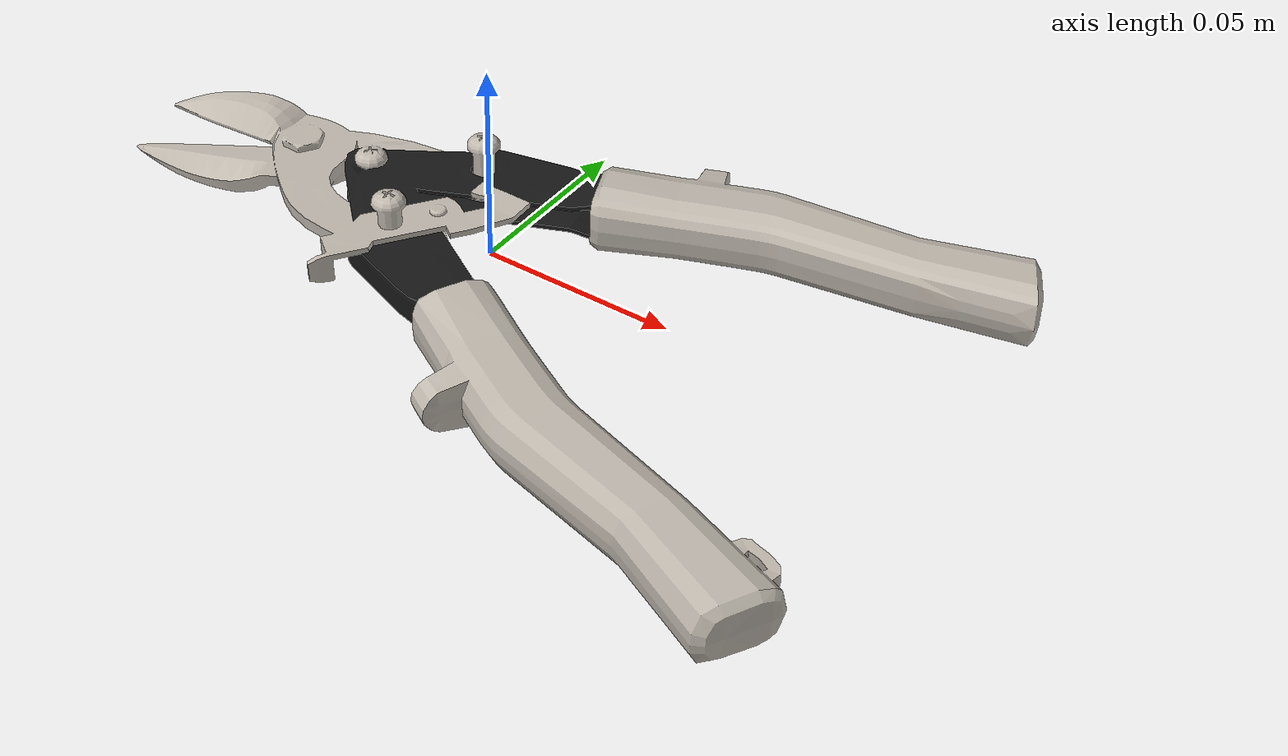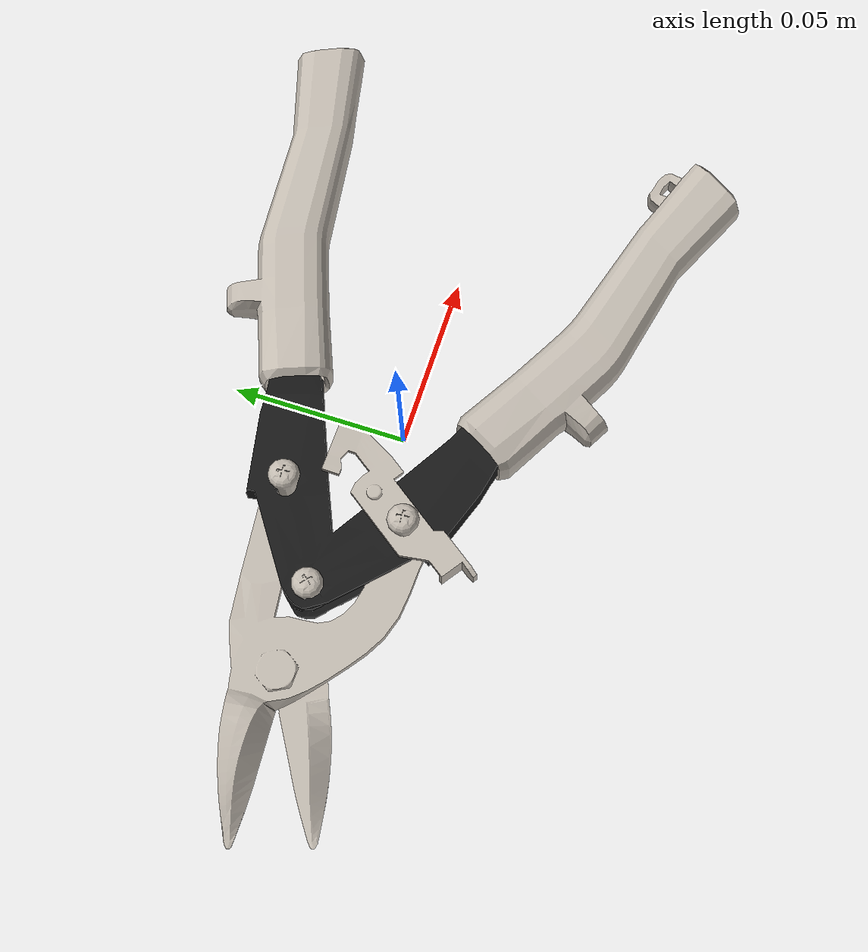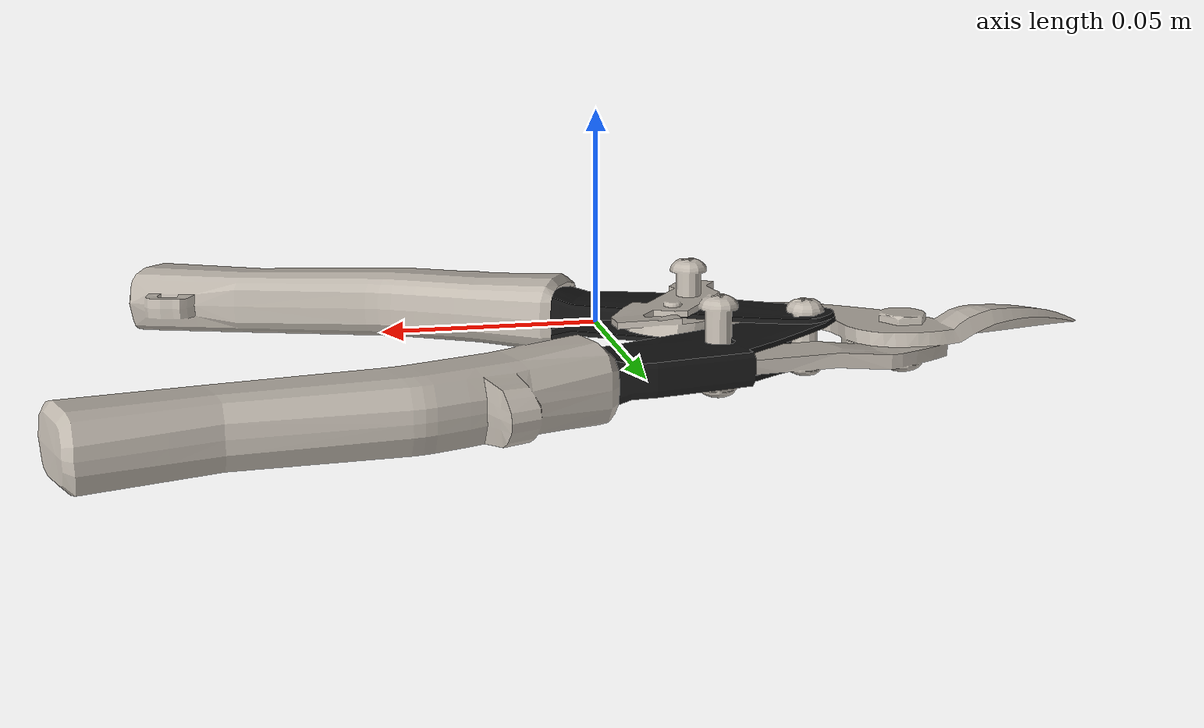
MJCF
<?xml version="1.0" ?>
<mujoco model="horticultural_scissors">
	<compiler meshdir="horticultural_scissors/meshes" texturedir="horticultural_scissors/textures" angle="radian" autolimits="true" balanceinertia="true" boundmass="0.000001" boundinertia="0.000001"/>
	<default>
		<default class="visual">
			<geom contype="0" conaffinity="0"/>
		</default>
		<default class="collision">
			<geom rgba="1.0 0.0 0.0 0.0"/>
		</default>
	</default>
	<asset>
		<mesh name="HorticulturalScissorsHilt" file="stl/HorticulturalScissorsHilt.stl" scale="1.0 1.0 1.0"/>
		<mesh name="HorticulturalScissorsHilt_001" file="stl/HorticulturalScissorsHilt_001.stl" scale="1.0 1.0 1.0"/>
		<mesh name="HorticulturalScissorsHilt_002" file="stl/HorticulturalScissorsHilt_002.stl" scale="1.0 1.0 1.0"/>
		<mesh name="HorticulturalScissorsHilt_003" file="stl/HorticulturalScissorsHilt_003.stl" scale="1.0 1.0 1.0"/>
		<mesh name="HorticulturalScissorsHilt_004" file="stl/HorticulturalScissorsHilt_004.stl" scale="1.0 1.0 1.0"/>
		<mesh name="HorticulturalScissorsHilt_005" file="stl/HorticulturalScissorsHilt_005.stl" scale="1.0 1.0 1.0"/>
		<mesh name="HorticulturalScissorsHilt_006" file="stl/HorticulturalScissorsHilt_006.stl" scale="1.0 1.0 1.0"/>
		<mesh name="HorticulturalScissorsHilt_007" file="stl/HorticulturalScissorsHilt_007.stl" scale="1.0 1.0 1.0"/>
		<mesh name="HorticulturalScissorsHilt_008" file="stl/HorticulturalScissorsHilt_008.stl" scale="1.0 1.0 1.0"/>
		<mesh name="HorticulturalScissorsHilt_009" file="stl/HorticulturalScissorsHilt_009.stl" scale="1.0 1.0 1.0"/>
		<mesh name="HorticulturalScissorsHilt_010" file="stl/HorticulturalScissorsHilt_010.stl" scale="1.0 1.0 1.0"/>
		<mesh name="HorticulturalScissorsHilt_011" file="stl/HorticulturalScissorsHilt_011.stl" scale="1.0 1.0 1.0"/>
		<mesh name="HorticulturalScissorsHilt_012" file="stl/HorticulturalScissorsHilt_012.stl" scale="1.0 1.0 1.0"/>
		<mesh name="HorticulturalScissorsHilt_013" file="stl/HorticulturalScissorsHilt_013.stl" scale="1.0 1.0 1.0"/>
		<mesh name="HorticulturalScissorsHilt_014" file="stl/HorticulturalScissorsHilt_014.stl" scale="1.0 1.0 1.0"/>
		<mesh name="HorticulturalScissorsHilt_015" file="stl/HorticulturalScissorsHilt_015.stl" scale="1.0 1.0 1.0"/>
		<mesh name="HorticulturalScissorsHilt_016" file="stl/HorticulturalScissorsHilt_016.stl" scale="1.0 1.0 1.0"/>
		<mesh name="HorticulturalScissorsHilt_017" file="stl/HorticulturalScissorsHilt_017.stl" scale="1.0 1.0 1.0"/>
		<mesh name="HorticulturalScissorsHilt_018" file="stl/HorticulturalScissorsHilt_018.stl" scale="1.0 1.0 1.0"/>
		<mesh name="HorticulturalScissorsHilt_019" file="stl/HorticulturalScissorsHilt_019.stl" scale="1.0 1.0 1.0"/>
		<mesh name="HorticulturalScissorsHilt_020" file="stl/HorticulturalScissorsHilt_020.stl" scale="1.0 1.0 1.0"/>
		<mesh name="HorticulturalScissorsHilt_021" file="stl/HorticulturalScissorsHilt_021.stl" scale="1.0 1.0 1.0"/>
		<mesh name="HorticulturalScissorsHilt_022" file="stl/HorticulturalScissorsHilt_022.stl" scale="1.0 1.0 1.0"/>
		<mesh name="HorticulturalScissorsHilt_023" file="stl/HorticulturalScissorsHilt_023.stl" scale="1.0 1.0 1.0"/>
		<mesh name="HorticulturalScissorsHilt_024" file="stl/HorticulturalScissorsHilt_024.stl" scale="1.0 1.0 1.0"/>
		<mesh name="HorticulturalScissorsHilt_025" file="stl/HorticulturalScissorsHilt_025.stl" scale="1.0 1.0 1.0"/>
		<mesh name="HorticulturalScissorsHilt_026" file="stl/HorticulturalScissorsHilt_026.stl" scale="1.0 1.0 1.0"/>
		<mesh name="HorticulturalScissorsHilt_027" file="stl/HorticulturalScissorsHilt_027.stl" scale="1.0 1.0 1.0"/>
		<mesh name="HorticulturalScissorsHilt_028" file="stl/HorticulturalScissorsHilt_028.stl" scale="1.0 1.0 1.0"/>
		<mesh name="HorticulturalScissorsHilt_029" file="stl/HorticulturalScissorsHilt_029.stl" scale="1.0 1.0 1.0"/>
		<mesh name="HorticulturalScissorsHilt_030" file="stl/HorticulturalScissorsHilt_030.stl" scale="1.0 1.0 1.0"/>
		<mesh name="HorticulturalScissorsHilt_031" file="stl/HorticulturalScissorsHilt_031.stl" scale="1.0 1.0 1.0"/>
		<mesh name="HorticulturalScissorsHilt_032" file="stl/HorticulturalScissorsHilt_032.stl" scale="1.0 1.0 1.0"/>
		<mesh name="HorticulturalScissorsHilt_033" file="stl/HorticulturalScissorsHilt_033.stl" scale="1.0 1.0 1.0"/>
		<mesh name="HorticulturalScissorsHilt_034" file="stl/HorticulturalScissorsHilt_034.stl" scale="1.0 1.0 1.0"/>
		<mesh name="HorticulturalScissorsHilt_035" file="stl/HorticulturalScissorsHilt_035.stl" scale="1.0 1.0 1.0"/>
		<mesh name="HorticulturalScissorsHilt_036" file="stl/HorticulturalScissorsHilt_036.stl" scale="1.0 1.0 1.0"/>
		<mesh name="HorticulturalScissorsHilt_037" file="stl/HorticulturalScissorsHilt_037.stl" scale="1.0 1.0 1.0"/>
		<mesh name="HorticulturalScissorsHilt_038" file="stl/HorticulturalScissorsHilt_038.stl" scale="1.0 1.0 1.0"/>
		<mesh name="HorticulturalScissorsHandle" file="obj/HorticulturalScissorsHandle.obj" scale="1.0 1.0 1.0"/>
		<mesh name="HorticulturalScissorsHandle_001" file="stl/HorticulturalScissorsHandle_001.stl" scale="1.0 1.0 1.0"/>
		<mesh name="HorticulturalScissorsHandle_002" file="stl/HorticulturalScissorsHandle_002.stl" scale="1.0 1.0 1.0"/>
		<mesh name="HorticulturalScissorsHandle_003" file="stl/HorticulturalScissorsHandle_003.stl" scale="1.0 1.0 1.0"/>
		<mesh name="HorticulturalScissorsHandle_004" file="stl/HorticulturalScissorsHandle_004.stl" scale="1.0 1.0 1.0"/>
		<mesh name="HorticulturalScissorsHandle_005" file="stl/HorticulturalScissorsHandle_005.stl" scale="1.0 1.0 1.0"/>
		<mesh name="HorticulturalScissorsHandle_006" file="stl/HorticulturalScissorsHandle_006.stl" scale="1.0 1.0 1.0"/>
		<mesh name="HorticulturalScissorsHandle_007" file="stl/HorticulturalScissorsHandle_007.stl" scale="1.0 1.0 1.0"/>
		<mesh name="HorticulturalScissorsHandle_008" file="stl/HorticulturalScissorsHandle_008.stl" scale="1.0 1.0 1.0"/>
		<mesh name="HorticulturalScissorsHandle_009" file="stl/HorticulturalScissorsHandle_009.stl" scale="1.0 1.0 1.0"/>
		<mesh name="HorticulturalScissorsHandle_010" file="stl/HorticulturalScissorsHandle_010.stl" scale="1.0 1.0 1.0"/>
		<mesh name="HorticulturalScissorsHandle_011" file="stl/HorticulturalScissorsHandle_011.stl" scale="1.0 1.0 1.0"/>
		<mesh name="HorticulturalScissorsHandle_012" file="stl/HorticulturalScissorsHandle_012.stl" scale="1.0 1.0 1.0"/>
		<mesh name="HorticulturalScissorsHandle_013" file="stl/HorticulturalScissorsHandle_013.stl" scale="1.0 1.0 1.0"/>
		<mesh name="HorticulturalScissorsHandle_014" file="stl/HorticulturalScissorsHandle_014.stl" scale="1.0 1.0 1.0"/>
		<mesh name="HorticulturalScissorsHandle_015" file="stl/HorticulturalScissorsHandle_015.stl" scale="1.0 1.0 1.0"/>
		<mesh name="HorticulturalScissorsHandle_016" file="stl/HorticulturalScissorsHandle_016.stl" scale="1.0 1.0 1.0"/>
		<mesh name="HorticulturalScissorsHandle_017" file="stl/HorticulturalScissorsHandle_017.stl" scale="1.0 1.0 1.0"/>
		<mesh name="HorticulturalScissorsHandle_018" file="stl/HorticulturalScissorsHandle_018.stl" scale="1.0 1.0 1.0"/>
		<mesh name="HorticulturalScissorsHandle_019" file="stl/HorticulturalScissorsHandle_019.stl" scale="1.0 1.0 1.0"/>
		<mesh name="HorticulturalScissorsHandle_020" file="stl/HorticulturalScissorsHandle_020.stl" scale="1.0 1.0 1.0"/>
		<mesh name="HorticulturalScissorsHandle_021" file="stl/HorticulturalScissorsHandle_021.stl" scale="1.0 1.0 1.0"/>
		<mesh name="HorticulturalScissorsHandle_022" file="stl/HorticulturalScissorsHandle_022.stl" scale="1.0 1.0 1.0"/>
		<mesh name="HorticulturalScissorsHandle_023" file="stl/HorticulturalScissorsHandle_023.stl" scale="1.0 1.0 1.0"/>
		<mesh name="HorticulturalScissorsHandle_024" file="stl/HorticulturalScissorsHandle_024.stl" scale="1.0 1.0 1.0"/>
		<mesh name="HorticulturalScissorsHandle_025" file="stl/HorticulturalScissorsHandle_025.stl" scale="1.0 1.0 1.0"/>
		<mesh name="HorticulturalScissorsHandle_026" file="stl/HorticulturalScissorsHandle_026.stl" scale="1.0 1.0 1.0"/>
		<mesh name="HorticulturalScissorsHandle_027" file="stl/HorticulturalScissorsHandle_027.stl" scale="1.0 1.0 1.0"/>
		<mesh name="HorticulturalScissorsBlade" file="obj/HorticulturalScissorsBlade.obj" scale="1.0 1.0 1.0"/>
		<mesh name="HorticulturalScissorsBlade_001" file="stl/HorticulturalScissorsBlade_001.stl" scale="1.0 1.0 1.0"/>
		<mesh name="HorticulturalScissorsBlade_002" file="stl/HorticulturalScissorsBlade_002.stl" scale="1.0 1.0 1.0"/>
		<mesh name="HorticulturalScissorsBlade_003" file="stl/HorticulturalScissorsBlade_003.stl" scale="1.0 1.0 1.0"/>
		<mesh name="HorticulturalScissorsBlade_004" file="stl/HorticulturalScissorsBlade_004.stl" scale="1.0 1.0 1.0"/>
		<mesh name="HorticulturalScissorsBlade_005" file="stl/HorticulturalScissorsBlade_005.stl" scale="1.0 1.0 1.0"/>
		<mesh name="HorticulturalScissorsBlade_006" file="stl/HorticulturalScissorsBlade_006.stl" scale="1.0 1.0 1.0"/>
		<mesh name="HorticulturalScissorsBlade_007" file="stl/HorticulturalScissorsBlade_007.stl" scale="1.0 1.0 1.0"/>
		<mesh name="HorticulturalScissorsBlade_008" file="stl/HorticulturalScissorsBlade_008.stl" scale="1.0 1.0 1.0"/>
		<mesh name="HorticulturalScissorsBlade_009" file="stl/HorticulturalScissorsBlade_009.stl" scale="1.0 1.0 1.0"/>
		<mesh name="HorticulturalScissorsBlade_010" file="stl/HorticulturalScissorsBlade_010.stl" scale="1.0 1.0 1.0"/>
		<mesh name="HorticulturalScissorsBlade_011" file="stl/HorticulturalScissorsBlade_011.stl" scale="1.0 1.0 1.0"/>
		<mesh name="HorticulturalScissorsBlade_012" file="stl/HorticulturalScissorsBlade_012.stl" scale="1.0 1.0 1.0"/>
		<mesh name="HorticulturalScissorsBlade_013" file="stl/HorticulturalScissorsBlade_013.stl" scale="1.0 1.0 1.0"/>
		<mesh name="HorticulturalScissorsBlade_014" file="stl/HorticulturalScissorsBlade_014.stl" scale="1.0 1.0 1.0"/>
		<mesh name="HorticulturalScissorsBlade_015" file="stl/HorticulturalScissorsBlade_015.stl" scale="1.0 1.0 1.0"/>
		<mesh name="HorticulturalScissorsBlade_016" file="stl/HorticulturalScissorsBlade_016.stl" scale="1.0 1.0 1.0"/>
		<mesh name="HorticulturalScissorsBlade_017" file="stl/HorticulturalScissorsBlade_017.stl" scale="1.0 1.0 1.0"/>
		<mesh name="HorticulturalScissorsBlade_018" file="stl/HorticulturalScissorsBlade_018.stl" scale="1.0 1.0 1.0"/>
		<mesh name="HorticulturalScissorsBlade_019" file="stl/HorticulturalScissorsBlade_019.stl" scale="1.0 1.0 1.0"/>
		<mesh name="HorticulturalScissorsBlade_020" file="stl/HorticulturalScissorsBlade_020.stl" scale="1.0 1.0 1.0"/>
		<material name="M_HorticulturalScissorsHilt" rgba="0.09019999951124191 0.09019999951124191 0.09019999951124191 1.0" emission="0.0"/>
		<material name="M_HorticulturalScissorsHandle" texture="T_HorticulturalScissorsHandle"/>
		<material name="M_HorticulturalScissorsBlade" texture="T_HorticulturalScissorsBlade"/>
		<texture name="T_HorticulturalScissorsHandle" type="2d" file="T_HorticulturalScissorsHandle.png"/>
		<texture name="T_HorticulturalScissorsBlade" type="2d" file="T_HorticulturalScissorsBlade.png"/>
	</asset>
	<worldbody>
		<body name="horticultural_scissors" pos="0.0 0.0 0.0" quat="1.0 0.0 0.0 0.0">
			<body name="horticultural_scissors_hilt" pos="0.0 0.0 0.0" quat="1.0 0.0 0.0 0.0">
				<inertial mass="0.06666233390569687" pos="-0.016844401136040688 0.008649985305964947 -0.0025599864311516285" quat="0.9163905382156372 -0.0035855546593666077 -0.038055650889873505 -0.3984560966491699" diaginertia="3.018991083081346e-05 4.829595854971558e-05 7.667651516385376e-05"/>
				<geom name="HorticulturalScissorsHilt" type="mesh" pos="0.0 0.0 0.0" quat="1.0 0.0 0.0 0.0" mesh="HorticulturalScissorsHilt" material="M_HorticulturalScissorsHilt" class="visual"/>
				<geom name="HorticulturalScissorsHilt_001" type="mesh" pos="0.0 0.0 0.0" quat="1.0 0.0 0.0 0.0" mesh="HorticulturalScissorsHilt_001" class="collision"/>
				<geom name="HorticulturalScissorsHilt_002" type="mesh" pos="0.0 0.0 0.0" quat="1.0 0.0 0.0 0.0" mesh="HorticulturalScissorsHilt_002" class="collision"/>
				<geom name="HorticulturalScissorsHilt_003" type="mesh" pos="0.0 0.0 0.0" quat="1.0 0.0 0.0 0.0" mesh="HorticulturalScissorsHilt_003" class="collision"/>
				<geom name="HorticulturalScissorsHilt_004" type="mesh" pos="0.0 0.0 0.0" quat="1.0 0.0 0.0 0.0" mesh="HorticulturalScissorsHilt_004" class="collision"/>
				<geom name="HorticulturalScissorsHilt_005" type="mesh" pos="0.0 0.0 0.0" quat="1.0 0.0 0.0 0.0" mesh="HorticulturalScissorsHilt_005" class="collision"/>
				<geom name="HorticulturalScissorsHilt_006" type="mesh" pos="0.0 0.0 0.0" quat="1.0 0.0 0.0 0.0" mesh="HorticulturalScissorsHilt_006" class="collision"/>
				<geom name="HorticulturalScissorsHilt_007" type="mesh" pos="0.0 0.0 0.0" quat="1.0 0.0 0.0 0.0" mesh="HorticulturalScissorsHilt_007" class="collision"/>
				<geom name="HorticulturalScissorsHilt_008" type="mesh" pos="0.0 0.0 0.0" quat="1.0 0.0 0.0 0.0" mesh="HorticulturalScissorsHilt_008" class="collision"/>
				<geom name="HorticulturalScissorsHilt_009" type="mesh" pos="0.0 0.0 0.0" quat="1.0 0.0 0.0 0.0" mesh="HorticulturalScissorsHilt_009" class="collision"/>
				<geom name="HorticulturalScissorsHilt_010" type="mesh" pos="0.0 0.0 0.0" quat="1.0 0.0 0.0 0.0" mesh="HorticulturalScissorsHilt_010" class="collision"/>
				<geom name="HorticulturalScissorsHilt_011" type="mesh" pos="0.0 0.0 0.0" quat="1.0 0.0 0.0 0.0" mesh="HorticulturalScissorsHilt_011" class="collision"/>
				<geom name="HorticulturalScissorsHilt_012" type="mesh" pos="0.0 0.0 0.0" quat="1.0 0.0 0.0 0.0" mesh="HorticulturalScissorsHilt_012" class="collision"/>
				<geom name="HorticulturalScissorsHilt_013" type="mesh" pos="0.0 0.0 0.0" quat="1.0 0.0 0.0 0.0" mesh="HorticulturalScissorsHilt_013" class="collision"/>
				<geom name="HorticulturalScissorsHilt_014" type="mesh" pos="0.0 0.0 0.0" quat="1.0 0.0 0.0 0.0" mesh="HorticulturalScissorsHilt_014" class="collision"/>
				<geom name="HorticulturalScissorsHilt_015" type="mesh" pos="0.0 0.0 0.0" quat="1.0 0.0 0.0 0.0" mesh="HorticulturalScissorsHilt_015" class="collision"/>
				<geom name="HorticulturalScissorsHilt_016" type="mesh" pos="0.0 0.0 0.0" quat="1.0 0.0 0.0 0.0" mesh="HorticulturalScissorsHilt_016" class="collision"/>
				<geom name="HorticulturalScissorsHilt_017" type="mesh" pos="0.0 0.0 0.0" quat="1.0 0.0 0.0 0.0" mesh="HorticulturalScissorsHilt_017" class="collision"/>
				<geom name="HorticulturalScissorsHilt_018" type="mesh" pos="0.0 0.0 0.0" quat="1.0 0.0 0.0 0.0" mesh="HorticulturalScissorsHilt_018" class="collision"/>
				<geom name="HorticulturalScissorsHilt_019" type="mesh" pos="0.0 0.0 0.0" quat="1.0 0.0 0.0 0.0" mesh="HorticulturalScissorsHilt_019" class="collision"/>
				<geom name="HorticulturalScissorsHilt_020" type="mesh" pos="0.0 0.0 0.0" quat="1.0 0.0 0.0 0.0" mesh="HorticulturalScissorsHilt_020" class="collision"/>
				<geom name="HorticulturalScissorsHilt_021" type="mesh" pos="0.0 0.0 0.0" quat="1.0 0.0 0.0 0.0" mesh="HorticulturalScissorsHilt_021" class="collision"/>
				<geom name="HorticulturalScissorsHilt_022" type="mesh" pos="0.0 0.0 0.0" quat="1.0 0.0 0.0 0.0" mesh="HorticulturalScissorsHilt_022" class="collision"/>
				<geom name="HorticulturalScissorsHilt_023" type="mesh" pos="0.0 0.0 0.0" quat="1.0 0.0 0.0 0.0" mesh="HorticulturalScissorsHilt_023" class="collision"/>
				<geom name="HorticulturalScissorsHilt_024" type="mesh" pos="0.0 0.0 0.0" quat="1.0 0.0 0.0 0.0" mesh="HorticulturalScissorsHilt_024" class="collision"/>
				<geom name="HorticulturalScissorsHilt_025" type="mesh" pos="0.0 0.0 0.0" quat="1.0 0.0 0.0 0.0" mesh="HorticulturalScissorsHilt_025" class="collision"/>
				<geom name="HorticulturalScissorsHilt_026" type="mesh" pos="0.0 0.0 0.0" quat="1.0 0.0 0.0 0.0" mesh="HorticulturalScissorsHilt_026" class="collision"/>
				<geom name="HorticulturalScissorsHilt_027" type="mesh" pos="0.0 0.0 0.0" quat="1.0 0.0 0.0 0.0" mesh="HorticulturalScissorsHilt_027" class="collision"/>
				<geom name="HorticulturalScissorsHilt_028" type="mesh" pos="0.0 0.0 0.0" quat="1.0 0.0 0.0 0.0" mesh="HorticulturalScissorsHilt_028" class="collision"/>
				<geom name="HorticulturalScissorsHilt_029" type="mesh" pos="0.0 0.0 0.0" quat="1.0 0.0 0.0 0.0" mesh="HorticulturalScissorsHilt_029" class="collision"/>
				<geom name="HorticulturalScissorsHilt_030" type="mesh" pos="0.0 0.0 0.0" quat="1.0 0.0 0.0 0.0" mesh="HorticulturalScissorsHilt_030" class="collision"/>
				<geom name="HorticulturalScissorsHilt_031" type="mesh" pos="0.0 0.0 0.0" quat="1.0 0.0 0.0 0.0" mesh="HorticulturalScissorsHilt_031" class="collision"/>
				<geom name="HorticulturalScissorsHilt_032" type="mesh" pos="0.0 0.0 0.0" quat="1.0 0.0 0.0 0.0" mesh="HorticulturalScissorsHilt_032" class="collision"/>
				<geom name="HorticulturalScissorsHilt_033" type="mesh" pos="0.0 0.0 0.0" quat="1.0 0.0 0.0 0.0" mesh="HorticulturalScissorsHilt_033" class="collision"/>
				<geom name="HorticulturalScissorsHilt_034" type="mesh" pos="0.0 0.0 0.0" quat="1.0 0.0 0.0 0.0" mesh="HorticulturalScissorsHilt_034" class="collision"/>
				<geom name="HorticulturalScissorsHilt_035" type="mesh" pos="0.0 0.0 0.0" quat="1.0 0.0 0.0 0.0" mesh="HorticulturalScissorsHilt_035" class="collision"/>
				<geom name="HorticulturalScissorsHilt_036" type="mesh" pos="0.0 0.0 0.0" quat="1.0 0.0 0.0 0.0" mesh="HorticulturalScissorsHilt_036" class="collision"/>
				<geom name="HorticulturalScissorsHilt_037" type="mesh" pos="0.0 0.0 0.0" quat="1.0 0.0 0.0 0.0" mesh="HorticulturalScissorsHilt_037" class="collision"/>
				<geom name="HorticulturalScissorsHilt_038" type="mesh" pos="0.0 0.0 0.0" quat="1.0 0.0 0.0 0.0" mesh="HorticulturalScissorsHilt_038" class="collision"/>
			</body>
			<body name="horticultural_scissors_blade" pos="0.0 0.0 0.0" quat="1.0 0.0 0.0 0.0">
				<inertial mass="0.10697202384471893" pos="-0.05413634330034256 0.007150502875447273 -0.0026331658009439707" quat="0.9977743625640869 -0.005329114850610495 -0.02377658523619175 -0.06206881254911423" diaginertia="2.020097781496588e-05 0.0003948468074668199 0.0004120948142372072"/>
				<geom name="HorticulturalScissorsBlade" type="mesh" pos="0.0 0.0 0.0" quat="1.0 0.0 0.0 0.0" mesh="HorticulturalScissorsBlade" material="M_HorticulturalScissorsBlade" class="visual"/>
				<geom name="HorticulturalScissorsBlade_001" type="mesh" pos="0.0 0.0 0.0" quat="1.0 0.0 0.0 0.0" mesh="HorticulturalScissorsBlade_001" class="collision"/>
				<geom name="HorticulturalScissorsBlade_002" type="mesh" pos="0.0 0.0 0.0" quat="1.0 0.0 0.0 0.0" mesh="HorticulturalScissorsBlade_002" class="collision"/>
				<geom name="HorticulturalScissorsBlade_003" type="mesh" pos="0.0 0.0 0.0" quat="1.0 0.0 0.0 0.0" mesh="HorticulturalScissorsBlade_003" class="collision"/>
				<geom name="HorticulturalScissorsBlade_004" type="mesh" pos="0.0 0.0 0.0" quat="1.0 0.0 0.0 0.0" mesh="HorticulturalScissorsBlade_004" class="collision"/>
				<geom name="HorticulturalScissorsBlade_005" type="mesh" pos="0.0 0.0 0.0" quat="1.0 0.0 0.0 0.0" mesh="HorticulturalScissorsBlade_005" class="collision"/>
				<geom name="HorticulturalScissorsBlade_006" type="mesh" pos="0.0 0.0 0.0" quat="1.0 0.0 0.0 0.0" mesh="HorticulturalScissorsBlade_006" class="collision"/>
				<geom name="HorticulturalScissorsBlade_007" type="mesh" pos="0.0 0.0 0.0" quat="1.0 0.0 0.0 0.0" mesh="HorticulturalScissorsBlade_007" class="collision"/>
				<geom name="HorticulturalScissorsBlade_008" type="mesh" pos="0.0 0.0 0.0" quat="1.0 0.0 0.0 0.0" mesh="HorticulturalScissorsBlade_008" class="collision"/>
				<geom name="HorticulturalScissorsBlade_009" type="mesh" pos="0.0 0.0 0.0" quat="1.0 0.0 0.0 0.0" mesh="HorticulturalScissorsBlade_009" class="collision"/>
				<geom name="HorticulturalScissorsBlade_010" type="mesh" pos="0.0 0.0 0.0" quat="1.0 0.0 0.0 0.0" mesh="HorticulturalScissorsBlade_010" class="collision"/>
				<geom name="HorticulturalScissorsBlade_011" type="mesh" pos="0.0 0.0 0.0" quat="1.0 0.0 0.0 0.0" mesh="HorticulturalScissorsBlade_011" class="collision"/>
				<geom name="HorticulturalScissorsBlade_012" type="mesh" pos="0.0 0.0 0.0" quat="1.0 0.0 0.0 0.0" mesh="HorticulturalScissorsBlade_012" class="collision"/>
				<geom name="HorticulturalScissorsBlade_013" type="mesh" pos="0.0 0.0 0.0" quat="1.0 0.0 0.0 0.0" mesh="HorticulturalScissorsBlade_013" class="collision"/>
				<geom name="HorticulturalScissorsBlade_014" type="mesh" pos="0.0 0.0 0.0" quat="1.0 0.0 0.0 0.0" mesh="HorticulturalScissorsBlade_014" class="collision"/>
				<geom name="HorticulturalScissorsBlade_015" type="mesh" pos="0.0 0.0 0.0" quat="1.0 0.0 0.0 0.0" mesh="HorticulturalScissorsBlade_015" class="collision"/>
				<geom name="HorticulturalScissorsBlade_016" type="mesh" pos="0.0 0.0 0.0" quat="1.0 0.0 0.0 0.0" mesh="HorticulturalScissorsBlade_016" class="collision"/>
				<geom name="HorticulturalScissorsBlade_017" type="mesh" pos="0.0 0.0 0.0" quat="1.0 0.0 0.0 0.0" mesh="HorticulturalScissorsBlade_017" class="collision"/>
				<geom name="HorticulturalScissorsBlade_018" type="mesh" pos="0.0 0.0 0.0" quat="1.0 0.0 0.0 0.0" mesh="HorticulturalScissorsBlade_018" class="collision"/>
				<geom name="HorticulturalScissorsBlade_019" type="mesh" pos="0.0 0.0 0.0" quat="1.0 0.0 0.0 0.0" mesh="HorticulturalScissorsBlade_019" class="collision"/>
				<geom name="HorticulturalScissorsBlade_020" type="mesh" pos="0.0 0.0 0.0" quat="1.0 0.0 0.0 0.0" mesh="HorticulturalScissorsBlade_020" class="collision"/>
			</body>
			<body name="horticultural_scissors_handle" pos="0.0 0.0 0.0" quat="1.0 0.0 0.0 0.0">
				<inertial mass="0.4273143708705902" pos="0.06107820197939873 0.0029734219424426556 -0.003066655481234193" quat="0.9973698258399963 -0.0015068440698087215 0.020899949595332146 0.06938540935516357" diaginertia="0.0010753888636827469 0.001988837728276849 0.0030460914131253958"/>
				<geom name="HorticulturalScissorsHandle" type="mesh" pos="0.0 0.0 0.0" quat="1.0 0.0 0.0 0.0" mesh="HorticulturalScissorsHandle" material="M_HorticulturalScissorsHandle" class="visual"/>
				<geom name="HorticulturalScissorsHandle_001" type="mesh" pos="0.0 0.0 0.0" quat="1.0 0.0 0.0 0.0" mesh="HorticulturalScissorsHandle_001" class="collision"/>
				<geom name="HorticulturalScissorsHandle_002" type="mesh" pos="0.0 0.0 0.0" quat="1.0 0.0 0.0 0.0" mesh="HorticulturalScissorsHandle_002" class="collision"/>
				<geom name="HorticulturalScissorsHandle_003" type="mesh" pos="0.0 0.0 0.0" quat="1.0 0.0 0.0 0.0" mesh="HorticulturalScissorsHandle_003" class="collision"/>
				<geom name="HorticulturalScissorsHandle_004" type="mesh" pos="0.0 0.0 0.0" quat="1.0 0.0 0.0 0.0" mesh="HorticulturalScissorsHandle_004" class="collision"/>
				<geom name="HorticulturalScissorsHandle_005" type="mesh" pos="0.0 0.0 0.0" quat="1.0 0.0 0.0 0.0" mesh="HorticulturalScissorsHandle_005" class="collision"/>
				<geom name="HorticulturalScissorsHandle_006" type="mesh" pos="0.0 0.0 0.0" quat="1.0 0.0 0.0 0.0" mesh="HorticulturalScissorsHandle_006" class="collision"/>
				<geom name="HorticulturalScissorsHandle_007" type="mesh" pos="0.0 0.0 0.0" quat="1.0 0.0 0.0 0.0" mesh="HorticulturalScissorsHandle_007" class="collision"/>
				<geom name="HorticulturalScissorsHandle_008" type="mesh" pos="0.0 0.0 0.0" quat="1.0 0.0 0.0 0.0" mesh="HorticulturalScissorsHandle_008" class="collision"/>
				<geom name="HorticulturalScissorsHandle_009" type="mesh" pos="0.0 0.0 0.0" quat="1.0 0.0 0.0 0.0" mesh="HorticulturalScissorsHandle_009" class="collision"/>
				<geom name="HorticulturalScissorsHandle_010" type="mesh" pos="0.0 0.0 0.0" quat="1.0 0.0 0.0 0.0" mesh="HorticulturalScissorsHandle_010" class="collision"/>
				<geom name="HorticulturalScissorsHandle_011" type="mesh" pos="0.0 0.0 0.0" quat="1.0 0.0 0.0 0.0" mesh="HorticulturalScissorsHandle_011" class="collision"/>
				<geom name="HorticulturalScissorsHandle_012" type="mesh" pos="0.0 0.0 0.0" quat="1.0 0.0 0.0 0.0" mesh="HorticulturalScissorsHandle_012" class="collision"/>
				<geom name="HorticulturalScissorsHandle_013" type="mesh" pos="0.0 0.0 0.0" quat="1.0 0.0 0.0 0.0" mesh="HorticulturalScissorsHandle_013" class="collision"/>
				<geom name="HorticulturalScissorsHandle_014" type="mesh" pos="0.0 0.0 0.0" quat="1.0 0.0 0.0 0.0" mesh="HorticulturalScissorsHandle_014" class="collision"/>
				<geom name="HorticulturalScissorsHandle_015" type="mesh" pos="0.0 0.0 0.0" quat="1.0 0.0 0.0 0.0" mesh="HorticulturalScissorsHandle_015" class="collision"/>
				<geom name="HorticulturalScissorsHandle_016" type="mesh" pos="0.0 0.0 0.0" quat="1.0 0.0 0.0 0.0" mesh="HorticulturalScissorsHandle_016" class="collision"/>
				<geom name="HorticulturalScissorsHandle_017" type="mesh" pos="0.0 0.0 0.0" quat="1.0 0.0 0.0 0.0" mesh="HorticulturalScissorsHandle_017" class="collision"/>
				<geom name="HorticulturalScissorsHandle_018" type="mesh" pos="0.0 0.0 0.0" quat="1.0 0.0 0.0 0.0" mesh="HorticulturalScissorsHandle_018" class="collision"/>
				<geom name="HorticulturalScissorsHandle_019" type="mesh" pos="0.0 0.0 0.0" quat="1.0 0.0 0.0 0.0" mesh="HorticulturalScissorsHandle_019" class="collision"/>
				<geom name="HorticulturalScissorsHandle_020" type="mesh" pos="0.0 0.0 0.0" quat="1.0 0.0 0.0 0.0" mesh="HorticulturalScissorsHandle_020" class="collision"/>
				<geom name="HorticulturalScissorsHandle_021" type="mesh" pos="0.0 0.0 0.0" quat="1.0 0.0 0.0 0.0" mesh="HorticulturalScissorsHandle_021" class="collision"/>
				<geom name="HorticulturalScissorsHandle_022" type="mesh" pos="0.0 0.0 0.0" quat="1.0 0.0 0.0 0.0" mesh="HorticulturalScissorsHandle_022" class="collision"/>
				<geom name="HorticulturalScissorsHandle_023" type="mesh" pos="0.0 0.0 0.0" quat="1.0 0.0 0.0 0.0" mesh="HorticulturalScissorsHandle_023" class="collision"/>
				<geom name="HorticulturalScissorsHandle_024" type="mesh" pos="0.0 0.0 0.0" quat="1.0 0.0 0.0 0.0" mesh="HorticulturalScissorsHandle_024" class="collision"/>
				<geom name="HorticulturalScissorsHandle_025" type="mesh" pos="0.0 0.0 0.0" quat="1.0 0.0 0.0 0.0" mesh="HorticulturalScissorsHandle_025" class="collision"/>
				<geom name="HorticulturalScissorsHandle_026" type="mesh" pos="0.0 0.0 0.0" quat="1.0 0.0 0.0 0.0" mesh="HorticulturalScissorsHandle_026" class="collision"/>
				<geom name="HorticulturalScissorsHandle_027" type="mesh" pos="0.0 0.0 0.0" quat="1.0 0.0 0.0 0.0" mesh="HorticulturalScissorsHandle_027" class="collision"/>
			</body>
		</body>
	</worldbody>
	<equality/>
</mujoco>
